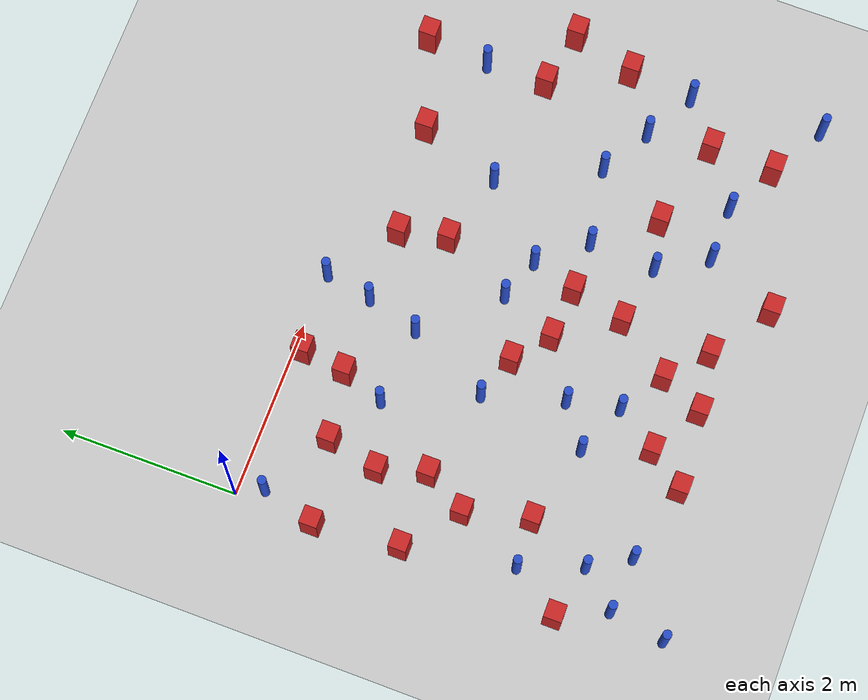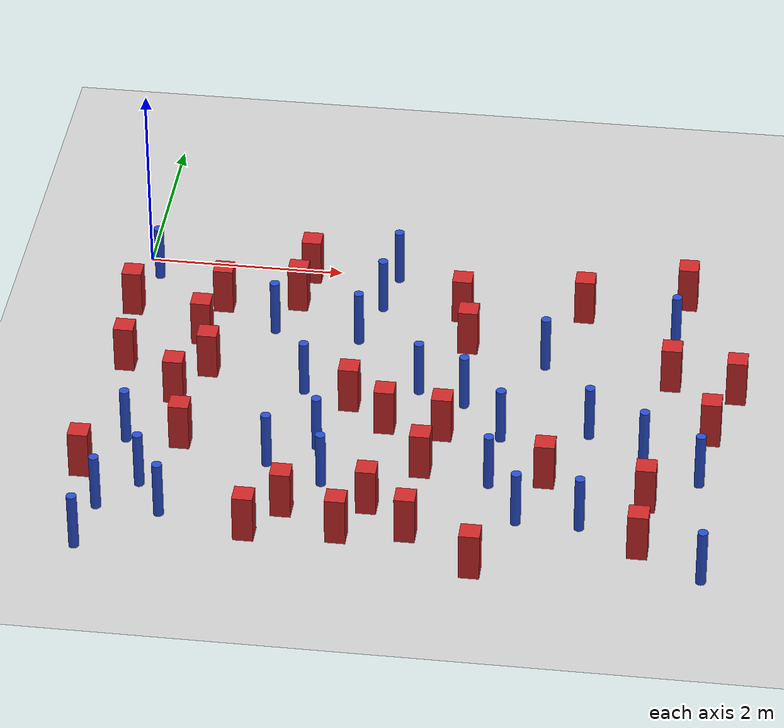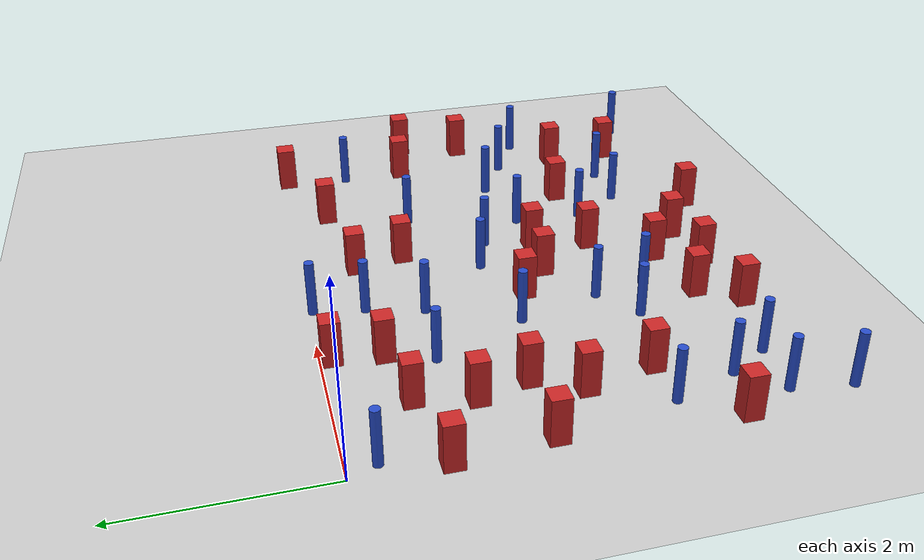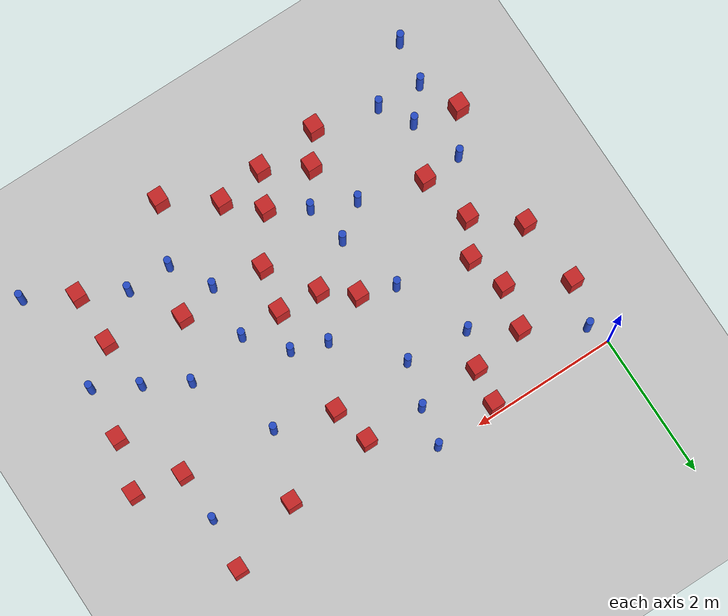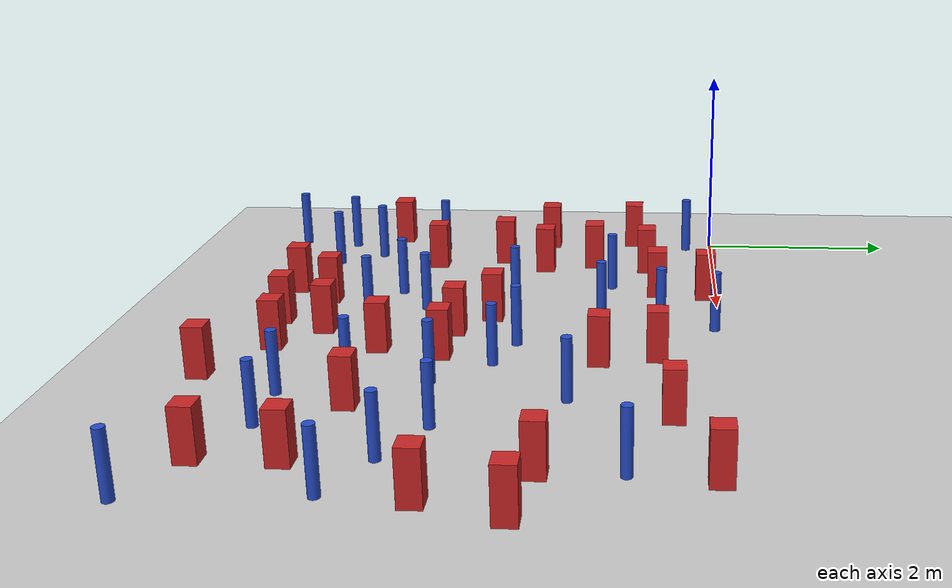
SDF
<sdf version="1.6">
 <world name="default">
  <model name="ground_plane">
   <static>1</static>
   <link name="link">
    <collision name="collision">
     <geometry><plane><normal>0 0 1</normal><size>100 100</size></plane></geometry>
     <surface><friction><ode><mu>100</mu><mu2>50</mu2></ode></friction></surface>
    </collision>
    <visual name="visual">
     <cast_shadows>0</cast_shadows>
     <geometry><plane><normal>0 0 1</normal><size>100 100</size></plane></geometry>
     <material>
      <ambient>1.0 1.0 1.0 1.0</ambient>
      <diffuse>0.8 0.8 0.8 1.0</diffuse>
      <specular>0.01 0.01 0.01 1.000000</specular>
     </material>
    </visual>
   </link>
  </model>
  <model name="pole_obstacle8">
   <static>true</static>
   <pose>4.84409418193 -3.91809828745 -9.47619616065e-06 5.49618799738e-07 2.36310414051e-07 -1.55090534805e-07</pose>
   <link name="link">
    <pose>0 0 0.3 0 -0 0</pose>
    <inertial>
     <mass>1</mass>
     <inertia><ixx>0.145833</ixx><ixy>0</ixy><ixz>0</ixz><iyy>0.145833</iyy><iyz>0</iyz><izz>0.125</izz></inertia>
    </inertial>
    <collision name="collision">
     <geometry><cylinder><radius>0.05</radius><length>.6</length></cylinder></geometry>
    </collision>
    <visual name="visual">
     <geometry><cylinder><radius>0.05</radius><length>.6</length></cylinder></geometry>
     <material>
      <script><name>Gazebo/Blue</name><uri>file://media/materials/scripts/gazebo.material</uri></script>
     </material>
    </visual>
   </link>
  </model>
  <model name="square_post_obstacle15">
   <static>true</static>
   <pose>5.60202587093 -0.11802808626 -6.11067671241e-07 -5.50515727128e-06 -8.79689657224e-07 2.37013304536e-05</pose>
   <link name="link">
    <pose>0 0 0.25 0 -0 0</pose>
    <inertial>
     <mass>100</mass>
     <inertia>
      <ixx>0.166667</ixx>
      <ixy>0</ixy>
      <ixz>0</ixz>
      <iyy>0.166667</iyy>
      <iyz>0</iyz>
      <izz>0.166667</izz>
     </inertia>
    </inertial>
    <collision name="collision"><geometry><box><size>.2 .2 .5</size></box></geometry></collision>
    <visual name="visual">
     <geometry><box><size>.2 .2 .5</size></box></geometry>
     <material>
      <script><name>Gazebo/Red</name><uri>file://media/materials/scripts/gazebo.material</uri></script>
     </material>
    </visual>
   </link>
  </model>
  <model name="square_post_obstacle19">
   <static>true</static>
   <pose>0.642465242177 -2.33366304643 -6.11067671241e-07 -5.50515727128e-06 -8.79689657224e-07 2.37013304536e-05</pose>
   <link name="link">
    <pose>0 0 0.25 0 -0 0</pose>
    <inertial>
     <mass>100</mass>
     <inertia>
      <ixx>0.166667</ixx>
      <ixy>0</ixy>
      <ixz>0</ixz>
      <iyy>0.166667</iyy>
      <iyz>0</iyz>
      <izz>0.166667</izz>
     </inertia>
    </inertial>
    <collision name="collision"><geometry><box><size>.2 .2 .5</size></box></geometry></collision>
    <visual name="visual">
     <geometry><box><size>.2 .2 .5</size></box></geometry>
     <material>
      <script><name>Gazebo/Red</name><uri>file://media/materials/scripts/gazebo.material</uri></script>
     </material>
    </visual>
   </link>
  </model>
  <model name="pole_obstacle12">
   <static>true</static>
   <pose>3.94235569095 -2.61710450384 -9.47619616065e-06 5.49618799737e-07 2.36310414051e-07 -1.55090534807e-07</pose>
   <link name="link">
    <pose>0 0 0.3 0 -0 0</pose>
    <inertial>
     <mass>1</mass>
     <inertia><ixx>0.145833</ixx><ixy>0</ixy><ixz>0</ixz><iyy>0.145833</iyy><iyz>0</iyz><izz>0.125</izz></inertia>
    </inertial>
    <collision name="collision">
     <geometry><cylinder><radius>0.05</radius><length>.6</length></cylinder></geometry>
    </collision>
    <visual name="visual">
     <geometry><cylinder><radius>0.05</radius><length>.6</length></cylinder></geometry>
     <material>
      <script><name>Gazebo/Blue</name><uri>file://media/materials/scripts/gazebo.material</uri></script>
     </material>
    </visual>
   </link>
  </model>
  <model name="pole_obstacle16">
   <static>true</static>
   <pose>4.80402283533 -2.46391848756 -9.47619616065e-06 5.49618799738e-07 2.36310414051e-07 -1.55090534805e-07</pose>
   <link name="link">
    <pose>0 0 0.3 0 -0 0</pose>
    <inertial>
     <mass>1</mass>
     <inertia><ixx>0.145833</ixx><ixy>0</ixy><ixz>0</ixz><iyy>0.145833</iyy><iyz>0</iyz><izz>0.125</izz></inertia>
    </inertial>
    <collision name="collision">
     <geometry><cylinder><radius>0.05</radius><length>.6</length></cylinder></geometry>
    </collision>
    <visual name="visual">
     <geometry><cylinder><radius>0.05</radius><length>.6</length></cylinder></geometry>
     <material>
      <script><name>Gazebo/Blue</name><uri>file://media/materials/scripts/gazebo.material</uri></script>
     </material>
    </visual>
   </link>
  </model>
  <model name="square_post_obstacle26">
   <static>true</static>
   <pose>5.43190930204 -4.22238837837 -6.11067671241e-07 -5.50515727128e-06 -8.79689657224e-07 2.37013304536e-05</pose>
   <link name="link">
    <pose>0 0 0.25 0 -0 0</pose>
    <inertial>
     <mass>100</mass>
     <inertia>
      <ixx>0.166667</ixx>
      <ixy>0</ixy>
      <ixz>0</ixz>
      <iyy>0.166667</iyy>
      <iyz>0</iyz>
      <izz>0.166667</izz>
     </inertia>
    </inertial>
    <collision name="collision"><geometry><box><size>.2 .2 .5</size></box></geometry></collision>
    <visual name="visual">
     <geometry><box><size>.2 .2 .5</size></box></geometry>
     <material>
      <script><name>Gazebo/Red</name><uri>file://media/materials/scripts/gazebo.material</uri></script>
     </material>
    </visual>
   </link>
  </model>
  <model name="square_post_obstacle29">
   <static>true</static>
   <pose>0.824173218192 -3.0604782688 -6.11067671241e-07 -5.50515727128e-06 -8.79689657224e-07 2.37013304536e-05</pose>
   <link name="link">
    <pose>0 0 0.25 0 -0 0</pose>
    <inertial>
     <mass>100</mass>
     <inertia>
      <ixx>0.166667</ixx>
      <ixy>0</ixy>
      <ixz>0</ixz>
      <iyy>0.166667</iyy>
      <iyz>0</iyz>
      <izz>0.166667</izz>
     </inertia>
    </inertial>
    <collision name="collision"><geometry><box><size>.2 .2 .5</size></box></geometry></collision>
    <visual name="visual">
     <geometry><box><size>.2 .2 .5</size></box></geometry>
     <material>
      <script><name>Gazebo/Red</name><uri>file://media/materials/scripts/gazebo.material</uri></script>
     </material>
    </visual>
   </link>
  </model>
  <model name="square_post_obstacle30">
   <static>true</static>
   <pose>2.55192457399 -4.34098175115 -6.11067671241e-07 -5.50515727128e-06 -8.79689657224e-07 2.37013304536e-05</pose>
   <link name="link">
    <pose>0 0 0.25 0 -0 0</pose>
    <inertial>
     <mass>100</mass>
     <inertia>
      <ixx>0.166667</ixx>
      <ixy>0</ixy>
      <ixz>0</ixz>
      <iyy>0.166667</iyy>
      <iyz>0</iyz>
      <izz>0.166667</izz>
     </inertia>
    </inertial>
    <collision name="collision"><geometry><box><size>.2 .2 .5</size></box></geometry></collision>
    <visual name="visual">
     <geometry><box><size>.2 .2 .5</size></box></geometry>
     <material>
      <script><name>Gazebo/Red</name><uri>file://media/materials/scripts/gazebo.material</uri></script>
     </material>
    </visual>
   </link>
  </model>
  <model name="pole_obstacle21">
   <static>true</static>
   <pose>3.52188848755 -2.11452140646 -9.47619616065e-06 5.49618799737e-07 2.36310414051e-07 -1.55090534807e-07</pose>
   <link name="link">
    <pose>0 0 0.3 0 -0 0</pose>
    <inertial>
     <mass>1</mass>
     <inertia><ixx>0.145833</ixx><ixy>0</ixy><ixz>0</ixz><iyy>0.145833</iyy><iyz>0</iyz><izz>0.125</izz></inertia>
    </inertial>
    <collision name="collision">
     <geometry><cylinder><radius>0.05</radius><length>.6</length></cylinder></geometry>
    </collision>
    <visual name="visual">
     <geometry><cylinder><radius>0.05</radius><length>.6</length></cylinder></geometry>
     <material>
      <script><name>Gazebo/Blue</name><uri>file://media/materials/scripts/gazebo.material</uri></script>
     </material>
    </visual>
   </link>
  </model>
  <model name="pole_obstacle29">
   <static>true</static>
   <pose>5.53097834278 -0.829301797897 -9.47619616065e-06 5.49618799737e-07 2.36310414061e-07 -1.550905348e-07</pose>
   <link name="link">
    <pose>0 0 0.3 0 -0 0</pose>
    <inertial>
     <mass>1</mass>
     <inertia><ixx>0.145833</ixx><ixy>0</ixy><ixz>0</ixz><iyy>0.145833</iyy><iyz>0</iyz><izz>0.125</izz></inertia>
    </inertial>
    <collision name="collision">
     <geometry><cylinder><radius>0.05</radius><length>.6</length></cylinder></geometry>
    </collision>
    <visual name="visual">
     <geometry><cylinder><radius>0.05</radius><length>.6</length></cylinder></geometry>
     <material>
      <script><name>Gazebo/Blue</name><uri>file://media/materials/scripts/gazebo.material</uri></script>
     </material>
    </visual>
   </link>
  </model>
  <model name="square_post_obstacle37">
   <static>true</static>
   <pose>6.20119093643 -1.65967044599 -6.11067671241e-07 -5.50515727128e-06 -8.79689657224e-07 2.37013304536e-05</pose>
   <link name="link">
    <pose>0 0 0.25 0 -0 0</pose>
    <inertial>
     <mass>100</mass>
     <inertia>
      <ixx>0.166667</ixx>
      <ixy>0</ixy>
      <ixz>0</ixz>
      <iyy>0.166667</iyy>
      <iyz>0</iyz>
      <izz>0.166667</izz>
     </inertia>
    </inertial>
    <collision name="collision"><geometry><box><size>.2 .2 .5</size></box></geometry></collision>
    <visual name="visual">
     <geometry><box><size>.2 .2 .5</size></box></geometry>
     <material>
      <script><name>Gazebo/Red</name><uri>file://media/materials/scripts/gazebo.material</uri></script>
     </material>
    </visual>
   </link>
  </model>
  <model name="square_post_obstacle42">
   <static>true</static>
   <pose>5.99500951014 -2.37107301579 -6.11067671241e-07 -5.50515727128e-06 -8.79689657224e-07 2.37013304536e-05</pose>
   <link name="link">
    <pose>0 0 0.25 0 -0 0</pose>
    <inertial>
     <mass>100</mass>
     <inertia>
      <ixx>0.166667</ixx>
      <ixy>0</ixy>
      <ixz>0</ixz>
      <iyy>0.166667</iyy>
      <iyz>0</iyz>
      <izz>0.166667</izz>
     </inertia>
    </inertial>
    <collision name="collision"><geometry><box><size>.2 .2 .5</size></box></geometry></collision>
    <visual name="visual">
     <geometry><box><size>.2 .2 .5</size></box></geometry>
     <material>
      <script><name>Gazebo/Red</name><uri>file://media/materials/scripts/gazebo.material</uri></script>
     </material>
    </visual>
   </link>
  </model>
  <model name="square_post_obstacle47">
   <static>true</static>
   <pose>1.71041923077 -0.116103067744 -6.11067671241e-07 -5.50515727128e-06 -8.79689657224e-07 2.37013304536e-05</pose>
   <link name="link">
    <pose>0 0 0.25 0 -0 0</pose>
    <inertial>
     <mass>100</mass>
     <inertia>
      <ixx>0.166667</ixx>
      <ixy>0</ixy>
      <ixz>0</ixz>
      <iyy>0.166667</iyy>
      <iyz>0</iyz>
      <izz>0.166667</izz>
     </inertia>
    </inertial>
    <collision name="collision"><geometry><box><size>.2 .2 .5</size></box></geometry></collision>
    <visual name="visual">
     <geometry><box><size>.2 .2 .5</size></box></geometry>
     <material>
      <script><name>Gazebo/Red</name><uri>file://media/materials/scripts/gazebo.material</uri></script>
     </material>
    </visual>
   </link>
  </model>
  <model name="pole_obstacle48">
   <static>true</static>
   <pose>2.50710377908 -0.577395252705 -9.47619616065e-06 5.49618799738e-07 2.36310414075e-07 -1.55090534793e-07</pose>
   <link name="link">
    <pose>0 0 0.3 0 -0 0</pose>
    <inertial>
     <mass>1</mass>
     <inertia><ixx>0.145833</ixx><ixy>0</ixy><ixz>0</ixz><iyy>0.145833</iyy><iyz>0</iyz><izz>0.125</izz></inertia>
    </inertial>
    <collision name="collision">
     <geometry><cylinder><radius>0.05</radius><length>.6</length></cylinder></geometry>
    </collision>
    <visual name="visual">
     <geometry><cylinder><radius>0.05</radius><length>.6</length></cylinder></geometry>
     <material>
      <script><name>Gazebo/Blue</name><uri>file://media/materials/scripts/gazebo.material</uri></script>
     </material>
    </visual>
   </link>
  </model>
  <model name="pole_obstacle51">
   <static>true</static>
   <pose>5.93853201949 -3.10354230801 -9.47619616065e-06 5.49618799738e-07 2.36310414051e-07 -1.55090534805e-07</pose>
   <link name="link">
    <pose>0 0 0.3 0 -0 0</pose>
    <inertial>
     <mass>1</mass>
     <inertia><ixx>0.145833</ixx><ixy>0</ixy><ixz>0</ixz><iyy>0.145833</iyy><iyz>0</iyz><izz>0.125</izz></inertia>
    </inertial>
    <collision name="collision">
     <geometry><cylinder><radius>0.05</radius><length>.6</length></cylinder></geometry>
    </collision>
    <visual name="visual">
     <geometry><cylinder><radius>0.05</radius><length>.6</length></cylinder></geometry>
     <material>
      <script><name>Gazebo/Blue</name><uri>file://media/materials/scripts/gazebo.material</uri></script>
     </material>
    </visual>
   </link>
  </model>
  <model name="square_post_obstacle56">
   <static>true</static>
   <pose>4.5722842716 -0.464826501186 -6.11067671241e-07 -5.50515727128e-06 -8.79689657224e-07 2.37013304536e-05</pose>
   <link name="link">
    <pose>0 0 0.25 0 -0 0</pose>
    <inertial>
     <mass>100</mass>
     <inertia>
      <ixx>0.166667</ixx>
      <ixy>0</ixy>
      <ixz>0</ixz>
      <iyy>0.166667</iyy>
      <iyz>0</iyz>
      <izz>0.166667</izz>
     </inertia>
    </inertial>
    <collision name="collision"><geometry><box><size>.2 .2 .5</size></box></geometry></collision>
    <visual name="visual">
     <geometry><box><size>.2 .2 .5</size></box></geometry>
     <material>
      <script><name>Gazebo/Red</name><uri>file://media/materials/scripts/gazebo.material</uri></script>
     </material>
    </visual>
   </link>
  </model>
  <model name="pole_obstacle53">
   <static>true</static>
   <pose>1.7175841031 -3.2967518725 -9.47619616065e-06 5.49618799737e-07 2.36310414062e-07 -1.55090534798e-07</pose>
   <link name="link">
    <pose>0 0 0.3 0 -0 0</pose>
    <inertial>
     <mass>1</mass>
     <inertia><ixx>0.145833</ixx><ixy>0</ixy><ixz>0</ixz><iyy>0.145833</iyy><iyz>0</iyz><izz>0.125</izz></inertia>
    </inertial>
    <collision name="collision">
     <geometry><cylinder><radius>0.05</radius><length>.6</length></cylinder></geometry>
    </collision>
    <visual name="visual">
     <geometry><cylinder><radius>0.05</radius><length>.6</length></cylinder></geometry>
     <material>
      <script><name>Gazebo/Blue</name><uri>file://media/materials/scripts/gazebo.material</uri></script>
     </material>
    </visual>
   </link>
  </model>
  <model name="pole_obstacle54">
   <static>true</static>
   <pose>1.90957171247 -2.08313474212 -9.47619616065e-06 5.49618799737e-07 2.36310414062e-07 -1.55090534798e-07</pose>
   <link name="link">
    <pose>0 0 0.3 0 -0 0</pose>
    <inertial>
     <mass>1</mass>
     <inertia><ixx>0.145833</ixx><ixy>0</ixy><ixz>0</ixz><iyy>0.145833</iyy><iyz>0</iyz><izz>0.125</izz></inertia>
    </inertial>
    <collision name="collision">
     <geometry><cylinder><radius>0.05</radius><length>.6</length></cylinder></geometry>
    </collision>
    <visual name="visual">
     <geometry><cylinder><radius>0.05</radius><length>.6</length></cylinder></geometry>
     <material>
      <script><name>Gazebo/Blue</name><uri>file://media/materials/scripts/gazebo.material</uri></script>
     </material>
    </visual>
   </link>
  </model>
  <model name="pole_obstacle55">
   <static>true</static>
   <pose>2.60699325427 -0.0461881529547 -9.47619616065e-06 5.49618799738e-07 2.36310414077e-07 -1.55090534792e-07</pose>
   <link name="link">
    <pose>0 0 0.3 0 -0 0</pose>
    <inertial>
     <mass>1</mass>
     <inertia><ixx>0.145833</ixx><ixy>0</ixy><ixz>0</ixz><iyy>0.145833</iyy><iyz>0</iyz><izz>0.125</izz></inertia>
    </inertial>
    <collision name="collision">
     <geometry><cylinder><radius>0.05</radius><length>.6</length></cylinder></geometry>
    </collision>
    <visual name="visual">
     <geometry><cylinder><radius>0.05</radius><length>.6</length></cylinder></geometry>
     <material>
      <script><name>Gazebo/Blue</name><uri>file://media/materials/scripts/gazebo.material</uri></script>
     </material>
    </visual>
   </link>
  </model>
  <model name="square_post_obstacle60">
   <static>true</static>
   <pose>5.53960527989 -1.52658333008 -6.11067671241e-07 -5.50515727128e-06 -8.79689657224e-07 2.37013304536e-05</pose>
   <link name="link">
    <pose>0 0 0.25 0 -0 0</pose>
    <inertial>
     <mass>100</mass>
     <inertia>
      <ixx>0.166667</ixx>
      <ixy>0</ixy>
      <ixz>0</ixz>
      <iyy>0.166667</iyy>
      <iyz>0</iyz>
      <izz>0.166667</izz>
     </inertia>
    </inertial>
    <collision name="collision"><geometry><box><size>.2 .2 .5</size></box></geometry></collision>
    <visual name="visual">
     <geometry><box><size>.2 .2 .5</size></box></geometry>
     <material>
      <script><name>Gazebo/Red</name><uri>file://media/materials/scripts/gazebo.material</uri></script>
     </material>
    </visual>
   </link>
  </model>
  <model name="square_post_obstacle61">
   <static>true</static>
   <pose>0.907717961777 -1.85826897735 -6.11067671241e-07 -5.50515727128e-06 -8.79689657224e-07 2.37013304536e-05</pose>
   <link name="link">
    <pose>0 0 0.25 0 -0 0</pose>
    <inertial>
     <mass>100</mass>
     <inertia>
      <ixx>0.166667</ixx>
      <ixy>0</ixy>
      <ixz>0</ixz>
      <iyy>0.166667</iyy>
      <iyz>0</iyz>
      <izz>0.166667</izz>
     </inertia>
    </inertial>
    <collision name="collision"><geometry><box><size>.2 .2 .5</size></box></geometry></collision>
    <visual name="visual">
     <geometry><box><size>.2 .2 .5</size></box></geometry>
     <material>
      <script><name>Gazebo/Red</name><uri>file://media/materials/scripts/gazebo.material</uri></script>
     </material>
    </visual>
   </link>
  </model>
  <model name="pole_obstacle58">
   <static>true</static>
   <pose>5.36713323966 -2.78478538936 -9.47619616065e-06 5.49618799738e-07 2.36310414051e-07 -1.55090534805e-07</pose>
   <link name="link">
    <pose>0 0 0.3 0 -0 0</pose>
    <inertial>
     <mass>1</mass>
     <inertia><ixx>0.145833</ixx><ixy>0</ixy><ixz>0</ixz><iyy>0.145833</iyy><iyz>0</iyz><izz>0.125</izz></inertia>
    </inertial>
    <collision name="collision">
     <geometry><cylinder><radius>0.05</radius><length>.6</length></cylinder></geometry>
    </collision>
    <visual name="visual">
     <geometry><cylinder><radius>0.05</radius><length>.6</length></cylinder></geometry>
     <material>
      <script><name>Gazebo/Blue</name><uri>file://media/materials/scripts/gazebo.material</uri></script>
     </material>
    </visual>
   </link>
  </model>
  <model name="pole_obstacle60">
   <static>true</static>
   <pose>1.4693902347 -1.09749905431 -9.47619616065e-06 5.49618799737e-07 2.36310414065e-07 -1.55090534798e-07</pose>
   <link name="link">
    <pose>0 0 0.3 0 -0 0</pose>
    <inertial>
     <mass>1</mass>
     <inertia><ixx>0.145833</ixx><ixy>0</ixy><ixz>0</ixz><iyy>0.145833</iyy><iyz>0</iyz><izz>0.125</izz></inertia>
    </inertial>
    <collision name="collision">
     <geometry><cylinder><radius>0.05</radius><length>.6</length></cylinder></geometry>
    </collision>
    <visual name="visual">
     <geometry><cylinder><radius>0.05</radius><length>.6</length></cylinder></geometry>
     <material>
      <script><name>Gazebo/Blue</name><uri>file://media/materials/scripts/gazebo.material</uri></script>
     </material>
    </visual>
   </link>
  </model>
  <model name="pole_obstacle69">
   <static>true</static>
   <pose>0.181665518315 -4.16221620771 -9.47619616065e-06 5.49618799738e-07 2.36310414064e-07 -1.55090534799e-07</pose>
   <link name="link">
    <pose>0 0 0.3 0 -0 0</pose>
    <inertial>
     <mass>1</mass>
     <inertia><ixx>0.145833</ixx><ixy>0</ixy><ixz>0</ixz><iyy>0.145833</iyy><iyz>0</iyz><izz>0.125</izz></inertia>
    </inertial>
    <collision name="collision">
     <geometry><cylinder><radius>0.05</radius><length>.6</length></cylinder></geometry>
    </collision>
    <visual name="visual">
     <geometry><cylinder><radius>0.05</radius><length>.6</length></cylinder></geometry>
     <material>
      <script><name>Gazebo/Blue</name><uri>file://media/materials/scripts/gazebo.material</uri></script>
     </material>
    </visual>
   </link>
  </model>
  <model name="pole_obstacle70">
   <static>true</static>
   <pose>0.0854281357 -4.78397211233 -9.47619616065e-06 5.49618799737e-07 2.36310414063e-07 -1.55090534799e-07</pose>
   <link name="link">
    <pose>0 0 0.3 0 -0 0</pose>
    <inertial>
     <mass>1</mass>
     <inertia><ixx>0.145833</ixx><ixy>0</ixy><ixz>0</ixz><iyy>0.145833</iyy><iyz>0</iyz><izz>0.125</izz></inertia>
    </inertial>
    <collision name="collision">
     <geometry><cylinder><radius>0.05</radius><length>.6</length></cylinder></geometry>
    </collision>
    <visual name="visual">
     <geometry><cylinder><radius>0.05</radius><length>.6</length></cylinder></geometry>
     <material>
      <script><name>Gazebo/Blue</name><uri>file://media/materials/scripts/gazebo.material</uri></script>
     </material>
    </visual>
   </link>
  </model>
  <model name="pole_obstacle72">
   <static>true</static>
   <pose>2.33745988843 -1.17294745899 -9.47619616065e-06 5.49618799737e-07 2.36310414072e-07 -1.55090534793e-07</pose>
   <link name="link">
    <pose>0 0 0.3 0 -0 0</pose>
    <inertial>
     <mass>1</mass>
     <inertia><ixx>0.145833</ixx><ixy>0</ixy><ixz>0</ixz><iyy>0.145833</iyy><iyz>0</iyz><izz>0.125</izz></inertia>
    </inertial>
    <collision name="collision">
     <geometry><cylinder><radius>0.05</radius><length>.6</length></cylinder></geometry>
    </collision>
    <visual name="visual">
     <geometry><cylinder><radius>0.05</radius><length>.6</length></cylinder></geometry>
     <material>
      <script><name>Gazebo/Blue</name><uri>file://media/materials/scripts/gazebo.material</uri></script>
     </material>
    </visual>
   </link>
  </model>
  <model name="square_post_obstacle91">
   <static>true</static>
   <pose>3.33116591982 -0.606985829176 -6.11067671241e-07 -5.50515727128e-06 -8.79689657224e-07 2.37013304536e-05</pose>
   <link name="link">
    <pose>0 0 0.25 0 -0 0</pose>
    <inertial>
     <mass>100</mass>
     <inertia>
      <ixx>0.166667</ixx>
      <ixy>0</ixy>
      <ixz>0</ixz>
      <iyy>0.166667</iyy>
      <iyz>0</iyz>
      <izz>0.166667</izz>
     </inertia>
    </inertial>
    <collision name="collision"><geometry><box><size>.2 .2 .5</size></box></geometry></collision>
    <visual name="visual">
     <geometry><box><size>.2 .2 .5</size></box></geometry>
     <material>
      <script><name>Gazebo/Red</name><uri>file://media/materials/scripts/gazebo.material</uri></script>
     </material>
    </visual>
   </link>
  </model>
  <model name="square_post_obstacle95">
   <static>true</static>
   <pose>0.0597656409937 -1.85615965648 -6.11067671241e-07 -5.50515727128e-06 -8.79689657224e-07 2.37013304536e-05</pose>
   <link name="link">
    <pose>0 0 0.25 0 -0 0</pose>
    <inertial>
     <mass>100</mass>
     <inertia>
      <ixx>0.166667</ixx>
      <ixy>0</ixy>
      <ixz>0</ixz>
      <iyy>0.166667</iyy>
      <iyz>0</iyz>
      <izz>0.166667</izz>
     </inertia>
    </inertial>
    <collision name="collision"><geometry><box><size>.2 .2 .5</size></box></geometry></collision>
    <visual name="visual">
     <geometry><box><size>.2 .2 .5</size></box></geometry>
     <material>
      <script><name>Gazebo/Red</name><uri>file://media/materials/scripts/gazebo.material</uri></script>
     </material>
    </visual>
   </link>
  </model>
  <model name="square_post_obstacle101">
   <static>true</static>
   <pose>1.64089436469 -0.617622913654 -6.11067671241e-07 -5.50515727128e-06 -8.79689657224e-07 2.37013304536e-05</pose>
   <link name="link">
    <pose>0 0 0.25 0 -0 0</pose>
    <inertial>
     <mass>100</mass>
     <inertia>
      <ixx>0.166667</ixx>
      <ixy>0</ixy>
      <ixz>0</ixz>
      <iyy>0.166667</iyy>
      <iyz>0</iyz>
      <izz>0.166667</izz>
     </inertia>
    </inertial>
    <collision name="collision"><geometry><box><size>.2 .2 .5</size></box></geometry></collision>
    <visual name="visual">
     <geometry><box><size>.2 .2 .5</size></box></geometry>
     <material>
      <script><name>Gazebo/Red</name><uri>file://media/materials/scripts/gazebo.material</uri></script>
     </material>
    </visual>
   </link>
  </model>
  <model name="square_post_obstacle108">
   <static>true</static>
   <pose>4.44258366814 -3.24678251267 -6.11067671241e-07 -5.50515727128e-06 -8.79689657224e-07 2.37013304536e-05</pose>
   <link name="link">
    <pose>0 0 0.25 0 -0 0</pose>
    <inertial>
     <mass>100</mass>
     <inertia>
      <ixx>0.166667</ixx>
      <ixy>0</ixy>
      <ixz>0</ixz>
      <iyy>0.166667</iyy>
      <iyz>0</iyz>
      <izz>0.166667</izz>
     </inertia>
    </inertial>
    <collision name="collision"><geometry><box><size>.2 .2 .5</size></box></geometry></collision>
    <visual name="visual">
     <geometry><box><size>.2 .2 .5</size></box></geometry>
     <material>
      <script><name>Gazebo/Red</name><uri>file://media/materials/scripts/gazebo.material</uri></script>
     </material>
    </visual>
   </link>
  </model>
  <model name="square_post_obstacle109">
   <static>true</static>
   <pose>2.78818184033 -2.57425309289 -6.11067671241e-07 -5.50515727128e-06 -8.79689657224e-07 2.37013304536e-05</pose>
   <link name="link">
    <pose>0 0 0.25 0 -0 0</pose>
    <inertial>
     <mass>100</mass>
     <inertia>
      <ixx>0.166667</ixx>
      <ixy>0</ixy>
      <ixz>0</ixz>
      <iyy>0.166667</iyy>
      <iyz>0</iyz>
      <izz>0.166667</izz>
     </inertia>
    </inertial>
    <collision name="collision"><geometry><box><size>.2 .2 .5</size></box></geometry></collision>
    <visual name="visual">
     <geometry><box><size>.2 .2 .5</size></box></geometry>
     <material>
      <script><name>Gazebo/Red</name><uri>file://media/materials/scripts/gazebo.material</uri></script>
     </material>
    </visual>
   </link>
  </model>
  <model name="square_post_obstacle111">
   <static>true</static>
   <pose>3.20645446317 -4.24312671806 -6.11067671241e-07 -5.50515727128e-06 -8.79689657224e-07 2.37013304536e-05</pose>
   <link name="link">
    <pose>0 0 0.25 0 -0 0</pose>
    <inertial>
     <mass>100</mass>
     <inertia>
      <ixx>0.166667</ixx>
      <ixy>0</ixy>
      <ixz>0</ixz>
      <iyy>0.166667</iyy>
      <iyz>0</iyz>
      <izz>0.166667</izz>
     </inertia>
    </inertial>
    <collision name="collision"><geometry><box><size>.2 .2 .5</size></box></geometry></collision>
    <visual name="visual">
     <geometry><box><size>.2 .2 .5</size></box></geometry>
     <material>
      <script><name>Gazebo/Red</name><uri>file://media/materials/scripts/gazebo.material</uri></script>
     </material>
    </visual>
   </link>
  </model>
  <model name="pole_obstacle121">
   <static>true</static>
   <pose>3.04864215495 -1.94392933344 -9.47619616065e-06 5.49618799737e-07 2.36310414072e-07 -1.55090534793e-07</pose>
   <link name="link">
    <pose>0 0 0.3 0 -0 0</pose>
    <inertial>
     <mass>1</mass>
     <inertia><ixx>0.145833</ixx><ixy>0</ixy><ixz>0</ixz><iyy>0.145833</iyy><iyz>0</iyz><izz>0.125</izz></inertia>
    </inertial>
    <collision name="collision">
     <geometry><cylinder><radius>0.05</radius><length>.6</length></cylinder></geometry>
    </collision>
    <visual name="visual">
     <geometry><cylinder><radius>0.05</radius><length>.6</length></cylinder></geometry>
     <material>
      <script><name>Gazebo/Blue</name><uri>file://media/materials/scripts/gazebo.material</uri></script>
     </material>
    </visual>
   </link>
  </model>
  <model name="pole_obstacle122">
   <static>true</static>
   <pose>0.803493348715 -4.2030124222 -9.47619616065e-06 5.49618799737e-07 2.36310414065e-07 -1.55090534796e-07</pose>
   <link name="link">
    <pose>0 0 0.3 0 -0 0</pose>
    <inertial>
     <mass>1</mass>
     <inertia><ixx>0.145833</ixx><ixy>0</ixy><ixz>0</ixz><iyy>0.145833</iyy><iyz>0</iyz><izz>0.125</izz></inertia>
    </inertial>
    <collision name="collision">
     <geometry><cylinder><radius>0.05</radius><length>.6</length></cylinder></geometry>
    </collision>
    <visual name="visual">
     <geometry><cylinder><radius>0.05</radius><length>.6</length></cylinder></geometry>
     <material>
      <script><name>Gazebo/Blue</name><uri>file://media/materials/scripts/gazebo.material</uri></script>
     </material>
    </visual>
   </link>
  </model>
  <model name="pole_obstacle132">
   <static>true</static>
   <pose>6.06300425877 -4.58396794034 -9.47619616065e-06 5.49618799737e-07 2.36310414037e-07 -1.55090534814e-07</pose>
   <link name="link">
    <pose>0 0 0.3 0 -0 0</pose>
    <inertial>
     <mass>1</mass>
     <inertia><ixx>0.145833</ixx><ixy>0</ixy><ixz>0</ixz><iyy>0.145833</iyy><iyz>0</iyz><izz>0.125</izz></inertia>
    </inertial>
    <collision name="collision">
     <geometry><cylinder><radius>0.05</radius><length>.6</length></cylinder></geometry>
    </collision>
    <visual name="visual">
     <geometry><cylinder><radius>0.05</radius><length>.6</length></cylinder></geometry>
     <material>
      <script><name>Gazebo/Blue</name><uri>file://media/materials/scripts/gazebo.material</uri></script>
     </material>
    </visual>
   </link>
  </model>
  <model name="pole_obstacle141">
   <static>true</static>
   <pose>0.536838556828 -3.76495553312 -9.47619616065e-06 5.49618799737e-07 2.36310414069e-07 -1.55090534796e-07</pose>
   <link name="link">
    <pose>0 0 0.3 0 -0 0</pose>
    <inertial>
     <mass>1</mass>
     <inertia><ixx>0.145833</ixx><ixy>0</ixy><ixz>0</ixz><iyy>0.145833</iyy><iyz>0</iyz><izz>0.125</izz></inertia>
    </inertial>
    <collision name="collision">
     <geometry><cylinder><radius>0.05</radius><length>.6</length></cylinder></geometry>
    </collision>
    <visual name="visual">
     <geometry><cylinder><radius>0.05</radius><length>.6</length></cylinder></geometry>
     <material>
      <script><name>Gazebo/Blue</name><uri>file://media/materials/scripts/gazebo.material</uri></script>
     </material>
    </visual>
   </link>
  </model>
  <model name="square_post_obstacle128">
   <static>true</static>
   <pose>3.22551857588 -3.23275917041 -6.11067671241e-07 -5.50515727128e-06 -8.79689657224e-07 2.37013304536e-05</pose>
   <link name="link">
    <pose>0 0 0.25 0 -0 0</pose>
    <inertial>
     <mass>100</mass>
     <inertia>
      <ixx>0.166667</ixx>
      <ixy>0</ixy>
      <ixz>0</ixz>
      <iyy>0.166667</iyy>
      <iyz>0</iyz>
      <izz>0.166667</izz>
     </inertia>
    </inertial>
    <collision name="collision"><geometry><box><size>.2 .2 .5</size></box></geometry></collision>
    <visual name="visual">
     <geometry><box><size>.2 .2 .5</size></box></geometry>
     <material>
      <script><name>Gazebo/Red</name><uri>file://media/materials/scripts/gazebo.material</uri></script>
     </material>
    </visual>
   </link>
  </model>
  <model name="pole_obstacle142">
   <static>true</static>
   <pose>0.135214226655 -0.286615871737 -9.47619616065e-06 5.49618799737e-07 2.36310414063e-07 -1.55090534797e-07</pose>
   <link name="link">
    <pose>0 0 0.3 0 -0 0</pose>
    <inertial>
     <mass>1</mass>
     <inertia><ixx>0.145833</ixx><ixy>0</ixy><ixz>0</ixz><iyy>0.145833</iyy><iyz>0</iyz><izz>0.125</izz></inertia>
    </inertial>
    <collision name="collision">
     <geometry><cylinder><radius>0.05</radius><length>.6</length></cylinder></geometry>
    </collision>
    <visual name="visual">
     <geometry><cylinder><radius>0.05</radius><length>.6</length></cylinder></geometry>
     <material>
      <script><name>Gazebo/Blue</name><uri>file://media/materials/scripts/gazebo.material</uri></script>
     </material>
    </visual>
   </link>
  </model>
  <model name="square_post_obstacle137">
   <static>true</static>
   <pose>-0.0290007296952 -0.894807801983 -6.11067671241e-07 -5.50515727128e-06 -8.79689657224e-07 2.37013304536e-05</pose>
   <link name="link">
    <pose>0 0 0.25 0 -0 0</pose>
    <inertial>
     <mass>100</mass>
     <inertia>
      <ixx>0.166667</ixx>
      <ixy>0</ixy>
      <ixz>0</ixz>
      <iyy>0.166667</iyy>
      <iyz>0</iyz>
      <izz>0.166667</izz>
     </inertia>
    </inertial>
    <collision name="collision"><geometry><box><size>.2 .2 .5</size></box></geometry></collision>
    <visual name="visual">
     <geometry><box><size>.2 .2 .5</size></box></geometry>
     <material>
      <script><name>Gazebo/Red</name><uri>file://media/materials/scripts/gazebo.material</uri></script>
     </material>
    </visual>
   </link>
  </model>
  <model name="pole_obstacle149">
   <static>true</static>
   <pose>4.25857227462 -1.37503483325 -9.47619616065e-06 5.49618799738e-07 2.36310414071e-07 -1.55090534796e-07</pose>
   <link name="link">
    <pose>0 0 0.3 0 -0 0</pose>
    <inertial>
     <mass>1</mass>
     <inertia><ixx>0.145833</ixx><ixy>0</ixy><ixz>0</ixz><iyy>0.145833</iyy><iyz>0</iyz><izz>0.125</izz></inertia>
    </inertial>
    <collision name="collision">
     <geometry><cylinder><radius>0.05</radius><length>.6</length></cylinder></geometry>
    </collision>
    <visual name="visual">
     <geometry><cylinder><radius>0.05</radius><length>.6</length></cylinder></geometry>
     <material>
      <script><name>Gazebo/Blue</name><uri>file://media/materials/scripts/gazebo.material</uri></script>
     </material>
    </visual>
   </link>
  </model>
  <model name="square_post_obstacle142">
   <static>true</static>
   <pose>0.75252429824 -1.32234848488 -6.11067671241e-07 -5.50515727128e-06 -8.79689657224e-07 2.37013304536e-05</pose>
   <link name="link">
    <pose>0 0 0.25 0 -0 0</pose>
    <inertial>
     <mass>100</mass>
     <inertia>
      <ixx>0.166667</ixx>
      <ixy>0</ixy>
      <ixz>0</ixz>
      <iyy>0.166667</iyy>
      <iyz>0</iyz>
      <izz>0.166667</izz>
     </inertia>
    </inertial>
    <collision name="collision"><geometry><box><size>.2 .2 .5</size></box></geometry></collision>
    <visual name="visual">
     <geometry><box><size>.2 .2 .5</size></box></geometry>
     <material>
      <script><name>Gazebo/Red</name><uri>file://media/materials/scripts/gazebo.material</uri></script>
     </material>
    </visual>
   </link>
  </model>
  <model name="square_post_obstacle144">
   <static>true</static>
   <pose>2.78227255999 -3.85777935126 -6.11067671241e-07 -5.50515727128e-06 -8.79689657224e-07 2.37013304536e-05</pose>
   <link name="link">
    <pose>0 0 0.25 0 -0 0</pose>
    <inertial>
     <mass>100</mass>
     <inertia>
      <ixx>0.166667</ixx>
      <ixy>0</ixy>
      <ixz>0</ixz>
      <iyy>0.166667</iyy>
      <iyz>0</iyz>
      <izz>0.166667</izz>
     </inertia>
    </inertial>
    <collision name="collision"><geometry><box><size>.2 .2 .5</size></box></geometry></collision>
    <visual name="visual">
     <geometry><box><size>.2 .2 .5</size></box></geometry>
     <material>
      <script><name>Gazebo/Red</name><uri>file://media/materials/scripts/gazebo.material</uri></script>
     </material>
    </visual>
   </link>
  </model>
  <model name="pole_obstacle156">
   <static>true</static>
   <pose>4.23051760889 -3.91283689251 -9.47619616065e-06 5.49618799738e-07 2.36310414051e-07 -1.55090534805e-07</pose>
   <link name="link">
    <pose>0 0 0.3 0 -0 0</pose>
    <inertial>
     <mass>1</mass>
     <inertia><ixx>0.145833</ixx><ixy>0</ixy><ixz>0</ixz><iyy>0.145833</iyy><iyz>0</iyz><izz>0.125</izz></inertia>
    </inertial>
    <collision name="collision">
     <geometry><cylinder><radius>0.05</radius><length>.6</length></cylinder></geometry>
    </collision>
    <visual name="visual">
     <geometry><cylinder><radius>0.05</radius><length>.6</length></cylinder></geometry>
     <material>
      <script><name>Gazebo/Blue</name><uri>file://media/materials/scripts/gazebo.material</uri></script>
     </material>
    </visual>
   </link>
  </model>
  <model name="square_post_obstacle157">
   <static>true</static>
   <pose>1.67318879486 -4.41445456438 -6.11067671241e-07 -5.50515727128e-06 -8.79689657224e-07 2.37013304536e-05</pose>
   <link name="link">
    <pose>0 0 0.25 0 -0 0</pose>
    <inertial>
     <mass>100</mass>
     <inertia>
      <ixx>0.166667</ixx>
      <ixy>0</ixy>
      <ixz>0</ixz>
      <iyy>0.166667</iyy>
      <iyz>0</iyz>
      <izz>0.166667</izz>
     </inertia>
    </inertial>
    <collision name="collision"><geometry><box><size>.2 .2 .5</size></box></geometry></collision>
    <visual name="visual">
     <geometry><box><size>.2 .2 .5</size></box></geometry>
     <material>
      <script><name>Gazebo/Red</name><uri>file://media/materials/scripts/gazebo.material</uri></script>
     </material>
    </visual>
   </link>
  </model>
  <model name="pole_obstacle181">
   <static>true</static>
   <pose>2.28867722691 -3.54263924137 -9.47619616065e-06 5.49618799737e-07 2.36310414051e-07 -1.55090534807e-07</pose>
   <link name="link">
    <pose>0 0 0.3 0 -0 0</pose>
    <inertial>
     <mass>1</mass>
     <inertia><ixx>0.145833</ixx><ixy>0</ixy><ixz>0</ixz><iyy>0.145833</iyy><iyz>0</iyz><izz>0.125</izz></inertia>
    </inertial>
    <collision name="collision">
     <geometry><cylinder><radius>0.05</radius><length>.6</length></cylinder></geometry>
    </collision>
    <visual name="visual">
     <geometry><cylinder><radius>0.05</radius><length>.6</length></cylinder></geometry>
     <material>
      <script><name>Gazebo/Blue</name><uri>file://media/materials/scripts/gazebo.material</uri></script>
     </material>
    </visual>
   </link>
  </model>
  <model name="pole_obstacle186">
   <static>true</static>
   <pose>0.284284225508 -3.08247397001 -9.47619616065e-06 5.49618799737e-07 2.36310414065e-07 -1.55090534798e-07</pose>
   <link name="link">
    <pose>0 0 0.3 0 -0 0</pose>
    <inertial>
     <mass>1</mass>
     <inertia><ixx>0.145833</ixx><ixy>0</ixy><ixz>0</ixz><iyy>0.145833</iyy><iyz>0</iyz><izz>0.125</izz></inertia>
    </inertial>
    <collision name="collision">
     <geometry><cylinder><radius>0.05</radius><length>.6</length></cylinder></geometry>
    </collision>
    <visual name="visual">
     <geometry><cylinder><radius>0.05</radius><length>.6</length></cylinder></geometry>
     <material>
      <script><name>Gazebo/Blue</name><uri>file://media/materials/scripts/gazebo.material</uri></script>
     </material>
    </visual>
   </link>
  </model>
  <model name="pole_obstacle187">
   <static>true</static>
   <pose>2.16533509836 -2.96899639672 -9.47619616065e-06 5.49618799737e-07 2.36310414051e-07 -1.55090534807e-07</pose>
   <link name="link">
    <pose>0 0 0.3 0 -0 0</pose>
    <inertial>
     <mass>1</mass>
     <inertia><ixx>0.145833</ixx><ixy>0</ixy><ixz>0</ixz><iyy>0.145833</iyy><iyz>0</iyz><izz>0.125</izz></inertia>
    </inertial>
    <collision name="collision">
     <geometry><cylinder><radius>0.05</radius><length>.6</length></cylinder></geometry>
    </collision>
    <visual name="visual">
     <geometry><cylinder><radius>0.05</radius><length>.6</length></cylinder></geometry>
     <material>
      <script><name>Gazebo/Blue</name><uri>file://media/materials/scripts/gazebo.material</uri></script>
     </material>
    </visual>
   </link>
  </model>
  <model name="square_post_obstacle179">
   <static>true</static>
   <pose>3.4524546668 -1.14341888074 -6.11067671241e-07 -5.50515727128e-06 -8.79689657224e-07 2.37013304536e-05</pose>
   <link name="link">
    <pose>0 0 0.25 0 -0 0</pose>
    <inertial>
     <mass>100</mass>
     <inertia>
      <ixx>0.166667</ixx>
      <ixy>0</ixy>
      <ixz>0</ixz>
      <iyy>0.166667</iyy>
      <iyz>0</iyz>
      <izz>0.166667</izz>
     </inertia>
    </inertial>
    <collision name="collision"><geometry><box><size>.2 .2 .5</size></box></geometry></collision>
    <visual name="visual">
     <geometry><box><size>.2 .2 .5</size></box></geometry>
     <material>
      <script><name>Gazebo/Red</name><uri>file://media/materials/scripts/gazebo.material</uri></script>
     </material>
    </visual>
   </link>
  </model>
  <model name="square_post_obstacle197">
   <static>true</static>
   <pose>5.44520295348 -3.49610110058 -6.11067671241e-07 -5.50515727128e-06 -8.79689657224e-07 2.37013304536e-05</pose>
   <link name="link">
    <pose>0 0 0.25 0 -0 0</pose>
    <inertial>
     <mass>100</mass>
     <inertia>
      <ixx>0.166667</ixx>
      <ixy>0</ixy>
      <ixz>0</ixz>
      <iyy>0.166667</iyy>
      <iyz>0</iyz>
      <izz>0.166667</izz>
     </inertia>
    </inertial>
    <collision name="collision"><geometry><box><size>.2 .2 .5</size></box></geometry></collision>
    <visual name="visual">
     <geometry><box><size>.2 .2 .5</size></box></geometry>
     <material>
      <script><name>Gazebo/Red</name><uri>file://media/materials/scripts/gazebo.material</uri></script>
     </material>
    </visual>
   </link>
  </model>
  <model name="pole_obstacle196">
   <static>true</static>
   <pose>3.9074393594 -3.36667945335 -9.47619616065e-06 5.49618799737e-07 2.36310414051e-07 -1.55090534807e-07</pose>
   <link name="link">
    <pose>0 0 0.3 0 -0 0</pose>
    <inertial>
     <mass>1</mass>
     <inertia><ixx>0.145833</ixx><ixy>0</ixy><ixz>0</ixz><iyy>0.145833</iyy><iyz>0</iyz><izz>0.125</izz></inertia>
    </inertial>
    <collision name="collision">
     <geometry><cylinder><radius>0.05</radius><length>.6</length></cylinder></geometry>
    </collision>
    <visual name="visual">
     <geometry><cylinder><radius>0.05</radius><length>.6</length></cylinder></geometry>
     <material>
      <script><name>Gazebo/Blue</name><uri>file://media/materials/scripts/gazebo.material</uri></script>
     </material>
    </visual>
   </link>
  </model>
  <model name="square_post_obstacle217">
   <static>true</static>
   <pose>1.97236741795 -4.00457857355 -6.11067671241e-07 -5.50515727128e-06 -8.79689657224e-07 2.37013304536e-05</pose>
   <link name="link">
    <pose>0 0 0.25 0 -0 0</pose>
    <inertial>
     <mass>100</mass>
     <inertia>
      <ixx>0.166667</ixx>
      <ixy>0</ixy>
      <ixz>0</ixz>
      <iyy>0.166667</iyy>
      <iyz>0</iyz>
      <izz>0.166667</izz>
     </inertia>
    </inertial>
    <collision name="collision"><geometry><box><size>.2 .2 .5</size></box></geometry></collision>
    <visual name="visual">
     <geometry><box><size>.2 .2 .5</size></box></geometry>
     <material>
      <script><name>Gazebo/Red</name><uri>file://media/materials/scripts/gazebo.material</uri></script>
     </material>
    </visual>
   </link>
  </model>
  <model name="square_post_obstacle227">
   <static>true</static>
   <pose>3.88116114848 -4.70875136708 -6.11067671241e-07 -5.50515727128e-06 -8.79689657224e-07 2.37013304536e-05</pose>
   <link name="link">
    <pose>0 0 0.25 0 -0 0</pose>
    <inertial>
     <mass>100</mass>
     <inertia>
      <ixx>0.166667</ixx>
      <ixy>0</ixy>
      <ixz>0</ixz>
      <iyy>0.166667</iyy>
      <iyz>0</iyz>
      <izz>0.166667</izz>
     </inertia>
    </inertial>
    <collision name="collision"><geometry><box><size>.2 .2 .5</size></box></geometry></collision>
    <visual name="visual">
     <geometry><box><size>.2 .2 .5</size></box></geometry>
     <material>
      <script><name>Gazebo/Red</name><uri>file://media/materials/scripts/gazebo.material</uri></script>
     </material>
    </visual>
   </link>
  </model>
  <model name="square_post_obstacle233">
   <static>true</static>
   <pose>2.3905099502 -2.25280002312 -6.11067671241e-07 -5.50515727128e-06 -8.79689657224e-07 2.37013304536e-05</pose>
   <link name="link">
    <pose>0 0 0.25 0 -0 0</pose>
    <inertial>
     <mass>100</mass>
     <inertia>
      <ixx>0.166667</ixx>
      <ixy>0</ixy>
      <ixz>0</ixz>
      <iyy>0.166667</iyy>
      <iyz>0</iyz>
      <izz>0.166667</izz>
     </inertia>
    </inertial>
    <collision name="collision"><geometry><box><size>.2 .2 .5</size></box></geometry></collision>
    <visual name="visual">
     <geometry><box><size>.2 .2 .5</size></box></geometry>
     <material>
      <script><name>Gazebo/Red</name><uri>file://media/materials/scripts/gazebo.material</uri></script>
     </material>
    </visual>
   </link>
  </model>
  <model name="square_post_obstacle236">
   <static>true</static>
   <pose>0.888623950203 -0.735937023122 -6.11067671241e-07 -5.50515727128e-06 -8.79689657224e-07 2.37013304536e-05</pose>
   <link name="link">
    <pose>0 0 0.25 0 -0 0</pose>
    <inertial>
     <mass>100</mass>
     <inertia>
      <ixx>0.166667</ixx>
      <ixy>0</ixy>
      <ixz>0</ixz>
      <iyy>0.166667</iyy>
      <iyz>0</iyz>
      <izz>0.166667</izz>
     </inertia>
    </inertial>
    <collision name="collision"><geometry><box><size>.2 .2 .5</size></box></geometry></collision>
    <visual name="visual">
     <geometry><box><size>.2 .2 .5</size></box></geometry>
     <material>
      <script><name>Gazebo/Red</name><uri>file://media/materials/scripts/gazebo.material</uri></script>
     </material>
    </visual>
   </link>
  </model>
  <model name="square_post_obstacle239">
   <static>true</static>
   <pose>3.3644999502 -2.62373002312 -6.11067671241e-07 -5.50515727128e-06 -8.79689657224e-07 2.37013304536e-05</pose>
   <link name="link">
    <pose>0 0 0.25 0 -0 0</pose>
    <inertial>
     <mass>100</mass>
     <inertia>
      <ixx>0.166667</ixx>
      <ixy>0</ixy>
      <ixz>0</ixz>
      <iyy>0.166667</iyy>
      <iyz>0</iyz>
      <izz>0.166667</izz>
     </inertia>
    </inertial>
    <collision name="collision"><geometry><box><size>.2 .2 .5</size></box></geometry></collision>
    <visual name="visual">
     <geometry><box><size>.2 .2 .5</size></box></geometry>
     <material>
      <script><name>Gazebo/Red</name><uri>file://media/materials/scripts/gazebo.material</uri></script>
     </material>
    </visual>
   </link>
  </model>
  <model name="square_post_obstacle241">
   <static>true</static>
   <pose>-0.0675940497969 -3.62325002312 -6.11067671241e-07 -5.50515727128e-06 -8.79689657224e-07 2.37013304536e-05</pose>
   <link name="link">
    <pose>0 0 0.25 0 -0 0</pose>
    <inertial>
     <mass>100</mass>
     <inertia>
      <ixx>0.166667</ixx>
      <ixy>0</ixy>
      <ixz>0</ixz>
      <iyy>0.166667</iyy>
      <iyz>0</iyz>
      <izz>0.166667</izz>
     </inertia>
    </inertial>
    <collision name="collision"><geometry><box><size>.2 .2 .5</size></box></geometry></collision>
    <visual name="visual">
     <geometry><box><size>.2 .2 .5</size></box></geometry>
     <material>
      <script><name>Gazebo/Red</name><uri>file://media/materials/scripts/gazebo.material</uri></script>
     </material>
    </visual>
   </link>
  </model>
 </world>
</sdf>
